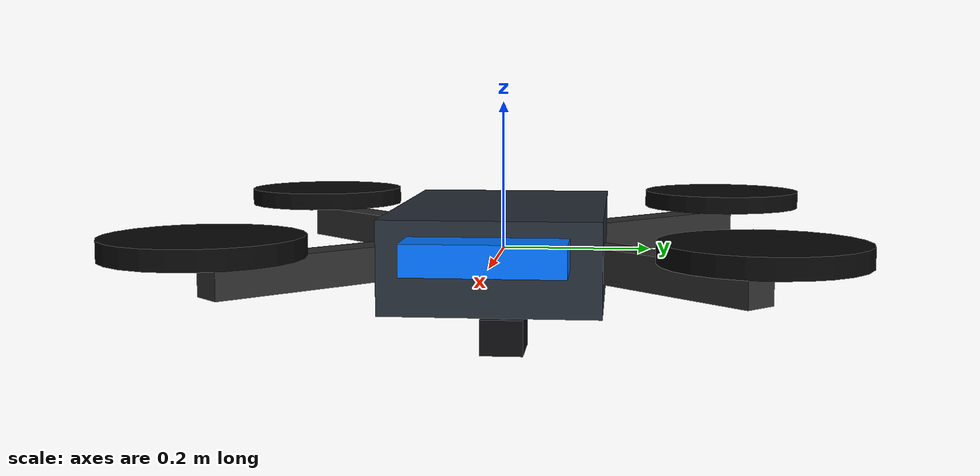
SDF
<?xml version="1.0" ?>
<sdf version="1.9">
  <model name="px4_depth_drone">
    <static>true</static>
    <pose>0 0 0 0 0 0</pose>

    <link name="base_link">
      <inertial>
        <mass>1.5</mass>
        <inertia>
          <ixx>0.03</ixx>
          <iyy>0.03</iyy>
          <izz>0.05</izz>
          <ixy>0</ixy>
          <ixz>0</ixz>
          <iyz>0</iyz>
        </inertia>
      </inertial>

      <collision name="body_collision">
        <geometry>
          <box>
            <size>0.42 0.28 0.12</size>
          </box>
        </geometry>
      </collision>
      <visual name="body_visual">
        <geometry>
          <box>
            <size>0.42 0.28 0.12</size>
          </box>
        </geometry>
        <material>
          <ambient>0.08 0.10 0.12 1</ambient>
          <diffuse>0.15 0.18 0.22 1</diffuse>
        </material>
      </visual>

      <visual name="front_marker">
        <pose>0.24 0 0.02 0 0 0</pose>
        <geometry>
          <box>
            <size>0.08 0.20 0.04</size>
          </box>
        </geometry>
        <material>
          <ambient>0.0 0.35 0.9 1</ambient>
          <diffuse>0.0 0.45 1.0 1</diffuse>
        </material>
      </visual>

      <visual name="arm_x_visual">
        <pose>0 0 0 0 0 0.78539816339</pose>
        <geometry>
          <box>
            <size>0.9 0.045 0.045</size>
          </box>
        </geometry>
        <material>
          <ambient>0.12 0.12 0.12 1</ambient>
          <diffuse>0.18 0.18 0.18 1</diffuse>
        </material>
      </visual>

      <visual name="arm_y_visual">
        <pose>0 0 0 0 0 -0.78539816339</pose>
        <geometry>
          <box>
            <size>0.9 0.045 0.045</size>
          </box>
        </geometry>
        <material>
          <ambient>0.12 0.12 0.12 1</ambient>
          <diffuse>0.18 0.18 0.18 1</diffuse>
        </material>
      </visual>

      <visual name="rotor_front_left">
        <pose>0.32 0.32 0.04 0 0 0</pose>
        <geometry>
          <cylinder>
            <radius>0.12</radius>
            <length>0.025</length>
          </cylinder>
        </geometry>
        <material>
          <ambient>0.02 0.02 0.02 1</ambient>
          <diffuse>0.03 0.03 0.03 1</diffuse>
        </material>
      </visual>

      <visual name="rotor_front_right">
        <pose>0.32 -0.32 0.04 0 0 0</pose>
        <geometry>
          <cylinder>
            <radius>0.12</radius>
            <length>0.025</length>
          </cylinder>
        </geometry>
        <material>
          <ambient>0.02 0.02 0.02 1</ambient>
          <diffuse>0.03 0.03 0.03 1</diffuse>
        </material>
      </visual>

      <visual name="rotor_rear_left">
        <pose>-0.32 0.32 0.04 0 0 0</pose>
        <geometry>
          <cylinder>
            <radius>0.12</radius>
            <length>0.025</length>
          </cylinder>
        </geometry>
        <material>
          <ambient>0.02 0.02 0.02 1</ambient>
          <diffuse>0.03 0.03 0.03 1</diffuse>
        </material>
      </visual>

      <visual name="rotor_rear_right">
        <pose>-0.32 -0.32 0.04 0 0 0</pose>
        <geometry>
          <cylinder>
            <radius>0.12</radius>
            <length>0.025</length>
          </cylinder>
        </geometry>
        <material>
          <ambient>0.02 0.02 0.02 1</ambient>
          <diffuse>0.03 0.03 0.03 1</diffuse>
        </material>
      </visual>

      <visual name="camera_body_visual">
        <pose>0 0 -0.12 0 0 0</pose>
        <geometry>
          <box>
            <size>0.08 0.06 0.05</size>
          </box>
        </geometry>
        <material>
          <ambient>0.02 0.02 0.025 1</ambient>
          <diffuse>0.05 0.05 0.06 1</diffuse>
        </material>
      </visual>

      <sensor name="downward_depth_camera" type="depth_camera">
        <pose>0 0 -0.12 0 1.57079632679 0</pose>
        <topic>depth_camera</topic>
        <gz_frame_id>camera_link</gz_frame_id>
        <always_on>true</always_on>
        <visualize>false</visualize>
        <update_rate>10</update_rate>
        <camera>
          <horizontal_fov>1.0471975512</horizontal_fov>
          <image>
            <width>320</width>
            <height>240</height>
            <format>R_FLOAT32</format>
          </image>
          <clip>
            <near>0.1</near>
            <far>20.0</far>
          </clip>
        </camera>
      </sensor>
    </link>
  </model>
</sdf>
